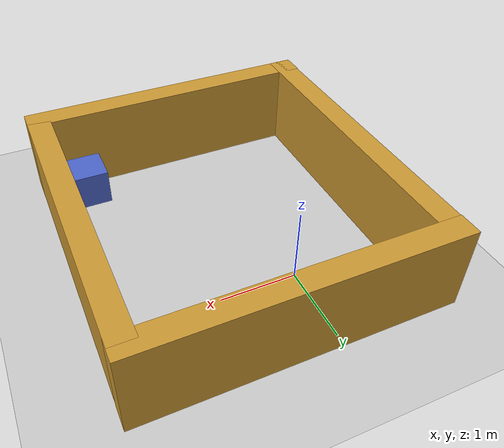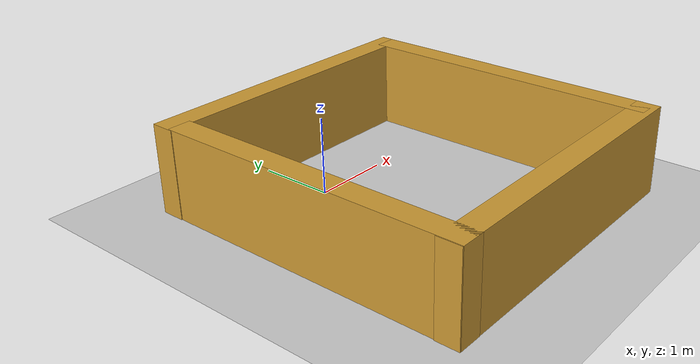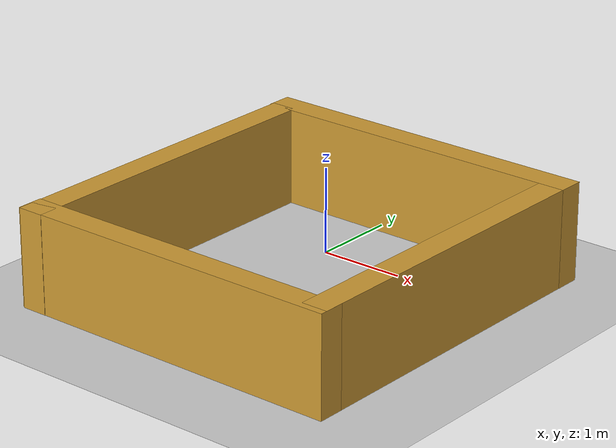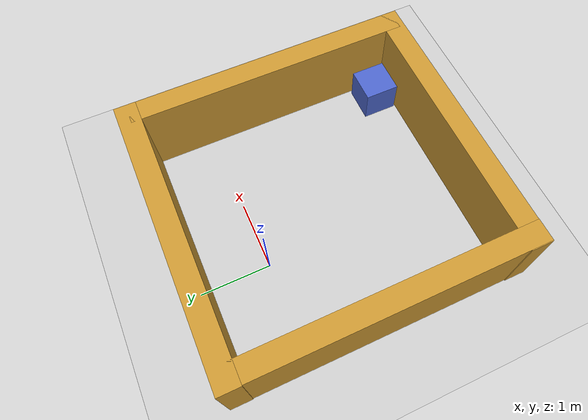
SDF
<sdf version="1.10">
 <world name="gauntlet_harmonic">
  <plugin name="gz::sim::systems::Physics" filename="gz-sim-physics-system"/>
  <plugin name="gz::sim::systems::Imu" filename="gz-sim-imu-system"/>
  <plugin name="gz::sim::systems::Sensors" filename="gz-sim-sensors-system"/>
  <plugin name="gz::sim::systems::UserCommands" filename="gz-sim-user-commands-system"/>
  <plugin name="gz::sim::systems::SceneBroadcaster" filename="gz-sim-scene-broadcaster-system"/>
  <plugin name="gz::sim::systems::Contact" filename="gz-sim-contact-system"/>
  <scene>
   <shadows>true</shadows>
   <ambient>0.400000006 0.400000006 0.400000006 1</ambient>
   <background>0.699999988 0.699999988 0.699999988 1</background>
  </scene>
  <gravity>0 0 -9.8000000000000007</gravity>
  <magnetic_field>6.0000000000000002e-06 2.3e-05 -4.1999999999999998e-05</magnetic_field>
  <atmosphere type="adiabatic"/>
  <physics name="default_physics" default="false" type="ode">
   <max_step_size>0.001</max_step_size>
   <real_time_factor>1</real_time_factor>
   <real_time_update_rate>1000</real_time_update_rate>
   <ode>
    <solver>
     <type>quick</type>
     <iters>150</iters>
     <sor>1.3999999999999999</sor>
     <use_dynamic_moi_rescaling>false</use_dynamic_moi_rescaling>
    </solver>
    <constraints>
     <cfm>0</cfm>
     <erp>0.20000000000000001</erp>
     <contact_max_correcting_vel>100</contact_max_correcting_vel>
     <contact_surface_layer>0.001</contact_surface_layer>
    </constraints>
   </ode>
  </physics>
  <model name="ground_plane">
   <static>true</static>
   <link name="link">
    <collision name="collision">
     <geometry><plane><normal>0 0 1</normal><size>100 100</size></plane></geometry>
     <surface>
      <contact><ode><kp>1000000</kp><kd>100</kd><max_vel>1</max_vel><min_depth>0.001</min_depth></ode></contact>
      <friction><ode><mu>1.5</mu><mu2>1.5</mu2></ode></friction>
     </surface>
    </collision>
    <visual name="visual">
     <geometry><plane><normal>0 0 1</normal><size>100 100</size></plane></geometry>
     <material>
      <ambient>0.800000012 0.800000012 0.800000012 1</ambient>
      <diffuse>0.800000012 0.800000012 0.800000012 1</diffuse>
      <specular>0.800000012 0.800000012 0.800000012 1</specular>
     </material>
    </visual>
    <inertial>
     <mass>1</mass>
     <inertia><ixx>1</ixx><ixy>0</ixy><ixz>0</ixz><iyy>1</iyy><iyz>0</iyz><izz>1</izz></inertia>
    </inertial>
   </link>
  </model>
  <model name="barrier_left">
   <static>true</static>
   <link name="link">
    <visual name="visual">
     <geometry><box><size>4.0654199999999996 0.30630000000000002 1.143</size></box></geometry>
     <material>
      <ambient>0.800000012 0.600000024 0.200000003 1</ambient>
      <diffuse>0.800000012 0.600000024 0.200000003 1</diffuse>
      <specular>0.200000003 0.200000003 0.200000003 1</specular>
     </material>
    </visual>
    <collision name="collision">
     <geometry><box><size>4.0654199999999996 0.30630000000000002 1.143</size></box></geometry>
     <surface>
      <contact><ode><kp>1000000</kp><kd>100</kd><max_vel>1</max_vel></ode></contact>
      <friction><ode><mu>1</mu><mu2>1</mu2></ode></friction>
     </surface>
    </collision>
    <inertial>
     <mass>1</mass>
     <inertia><ixx>1</ixx><ixy>0</ixy><ixz>0</ixz><iyy>1</iyy><iyz>0</iyz><izz>1</izz></inertia>
    </inertial>
   </link>
   <pose>2.3771598339080811 -1.0449994802474976 0.57150000333786011 0 0 -1.5708000357176291</pose>
  </model>
  <model name="barrier_center">
   <static>true</static>
   <link name="link">
    <visual name="visual">
     <geometry><box><size>4.0654199999999996 0.30630000000000002 1.143</size></box></geometry>
     <material>
      <ambient>0.800000012 0.600000024 0.200000003 1</ambient>
      <diffuse>0.800000012 0.600000024 0.200000003 1</diffuse>
      <specular>0.200000003 0.200000003 0.200000003 1</specular>
     </material>
    </visual>
    <collision name="collision">
     <geometry><box><size>4.0654199999999996 0.30630000000000002 1.143</size></box></geometry>
     <surface>
      <contact><ode><kp>1000000</kp><kd>100</kd><max_vel>1</max_vel></ode></contact>
      <friction><ode><mu>1</mu><mu2>1</mu2></ode></friction>
     </surface>
    </collision>
    <inertial>
     <mass>1</mass>
     <inertia><ixx>1</ixx><ixy>0</ixy><ixz>0</ixz><iyy>1</iyy><iyz>0</iyz><izz>1</izz></inertia>
    </inertial>
   </link>
   <pose>0.5 1 0.57150000000000001 0 0 0</pose>
  </model>
  <model name="barrier_right">
   <static>true</static>
   <link name="link">
    <visual name="visual">
     <geometry><box><size>4.0654199999999996 0.30630000000000002 1.143</size></box></geometry>
     <material>
      <ambient>0.800000012 0.600000024 0.200000003 1</ambient>
      <diffuse>0.800000012 0.600000024 0.200000003 1</diffuse>
      <specular>0.200000003 0.200000003 0.200000003 1</specular>
     </material>
    </visual>
    <collision name="collision">
     <geometry><box><size>4.0654199999999996 0.30630000000000002 1.143</size></box></geometry>
     <surface>
      <contact><ode><kp>1000000</kp><kd>100</kd><max_vel>1</max_vel></ode></contact>
      <friction><ode><mu>1</mu><mu2>1</mu2></ode></friction>
     </surface>
    </collision>
    <inertial>
     <mass>1</mass>
     <inertia><ixx>1</ixx><ixy>0</ixy><ixz>0</ixz><iyy>1</iyy><iyz>0</iyz><izz>1</izz></inertia>
    </inertial>
   </link>
   <pose>-1.3705070018768311 -1.1272494792938232 0.57150000333786011 0 0 1.5708000357176291</pose>
  </model>
  <model name="barrier_bottom">
   <static>true</static>
   <link name="link">
    <visual name="visual">
     <geometry><box><size>4.0654199999999996 0.30630000000000002 1.143</size></box></geometry>
     <material>
      <ambient>0.800000012 0.600000024 0.200000003 1</ambient>
      <diffuse>0.800000012 0.600000024 0.200000003 1</diffuse>
      <specular>0.200000003 0.200000003 0.200000003 1</specular>
     </material>
    </visual>
    <collision name="collision">
     <geometry><box><size>4.0654199999999996 0.30630000000000002 1.143</size></box></geometry>
     <surface>
      <contact><ode><kp>1000000</kp><kd>100</kd><max_vel>1</max_vel></ode></contact>
      <friction><ode><mu>1</mu><mu2>1</mu2></ode></friction>
     </surface>
    </collision>
    <inertial>
     <mass>1</mass>
     <inertia><ixx>1</ixx><ixy>0</ixy><ixz>0</ixz><iyy>1</iyy><iyz>0</iyz><izz>1</izz></inertia>
    </inertial>
   </link>
   <pose>0.49811446666717529 -3.0030701160430908 0.57150000333786011 0 0 0</pose>
  </model>
  <model name="cube_2">
   <static>true</static>
   <link name="link">
    <visual name="visual">
     <geometry><box><size>0.5 0.5 0.5</size></box></geometry>
     <material>
      <ambient>0.300000012 0.400000006 0.800000012 1</ambient>
      <diffuse>0.300000012 0.400000006 0.800000012 1</diffuse>
     </material>
    </visual>
    <collision name="collision">
     <geometry><box><size>0.5 0.5 0.5</size></box></geometry>
     <surface>
      <contact><ode><kp>1000000</kp><kd>100</kd><max_vel>1</max_vel></ode></contact>
      <friction><ode><mu>1</mu><mu2>1</mu2></ode></friction>
     </surface>
    </collision>
    <inertial>
     <mass>1</mass>
     <inertia><ixx>1</ixx><ixy>0</ixy><ixz>0</ixz><iyy>1</iyy><iyz>0</iyz><izz>1</izz></inertia>
    </inertial>
   </link>
   <pose>1.9247845411300659 -2.5756900310516357 0.25 0 0 0</pose>
  </model>
  <light name="sun" type="directional">
   <intensity>1</intensity>
   <direction>-0.5 0.20000000000000001 -1</direction>
   <diffuse>1 1 1 1</diffuse>
   <specular>0.200000003 0.200000003 0.200000003 1</specular>
   <attenuation><range>10</range><linear>1</linear><constant>1</constant><quadratic>0</quadratic></attenuation>
   <spot><inner_angle>0</inner_angle><outer_angle>0</outer_angle><falloff>0</falloff></spot>
  </light>
 </world>
</sdf>
